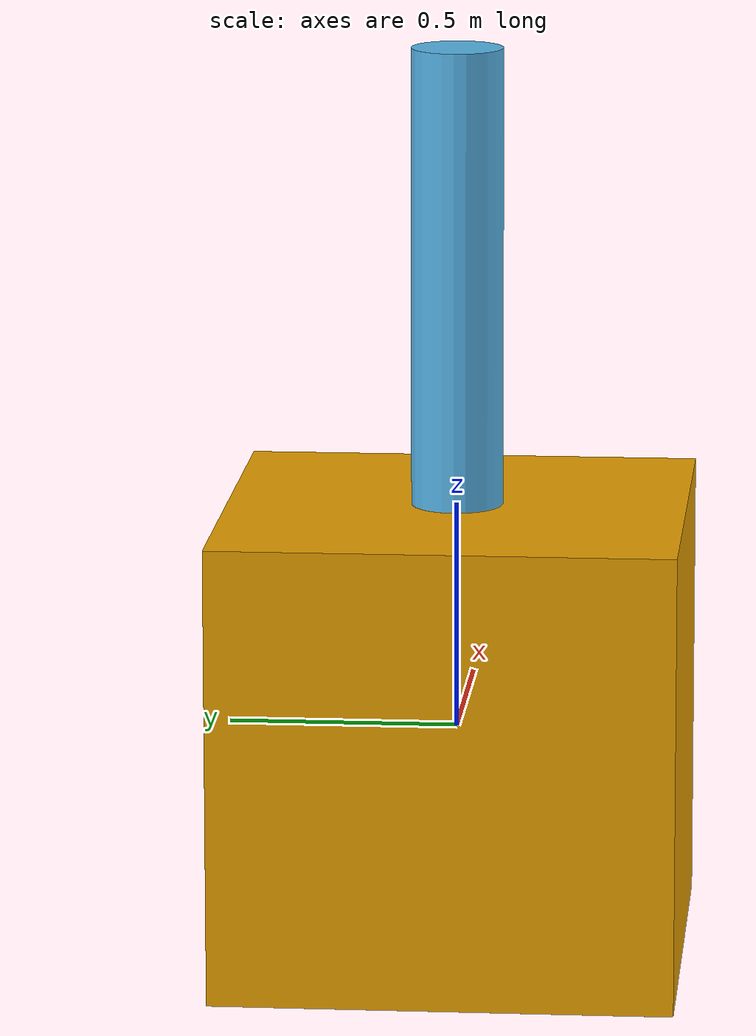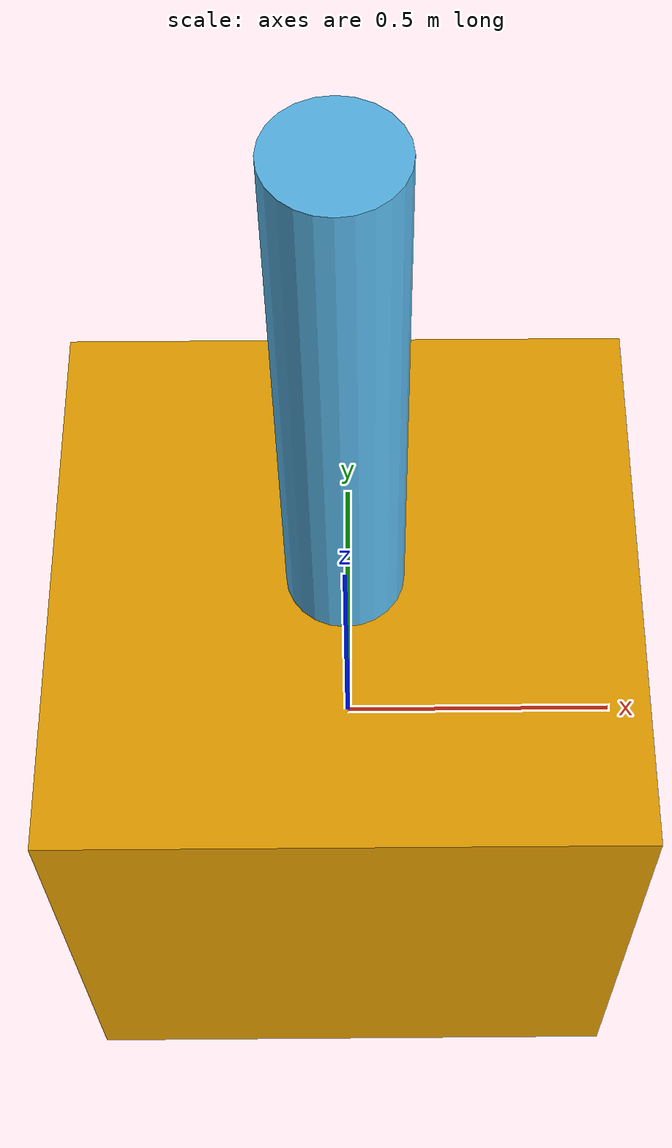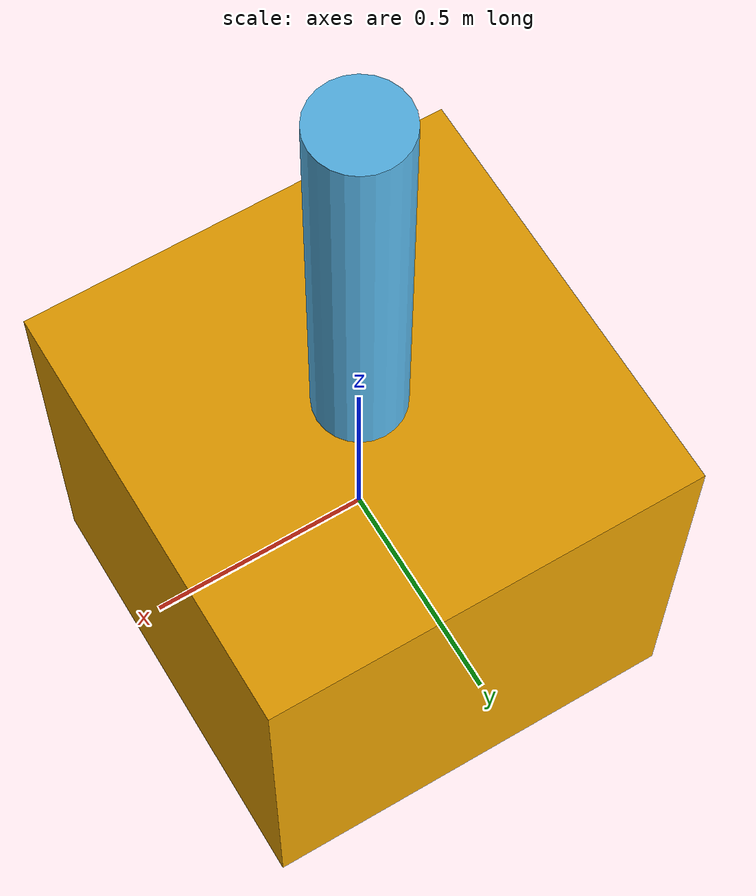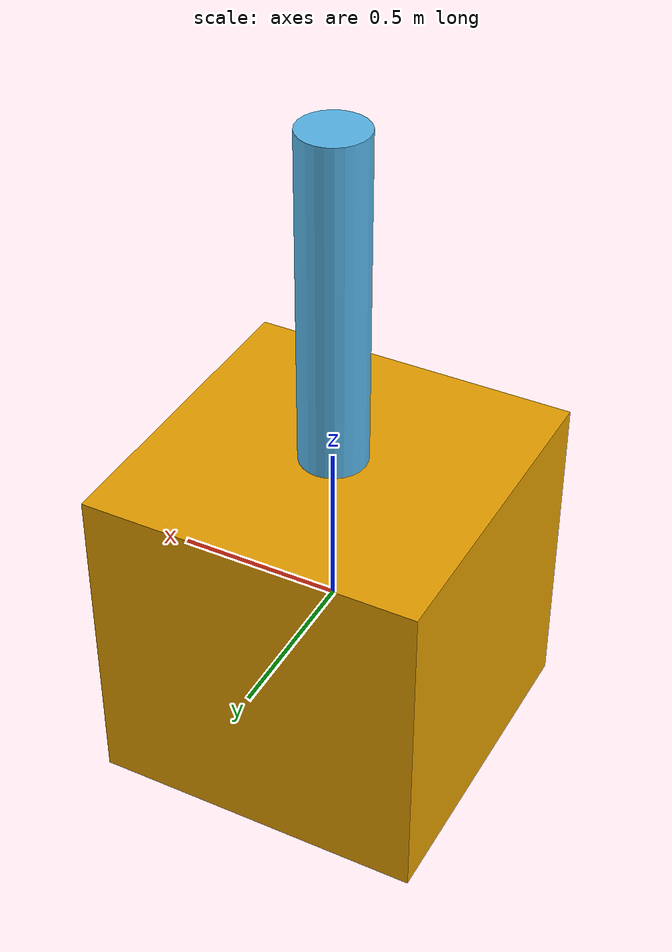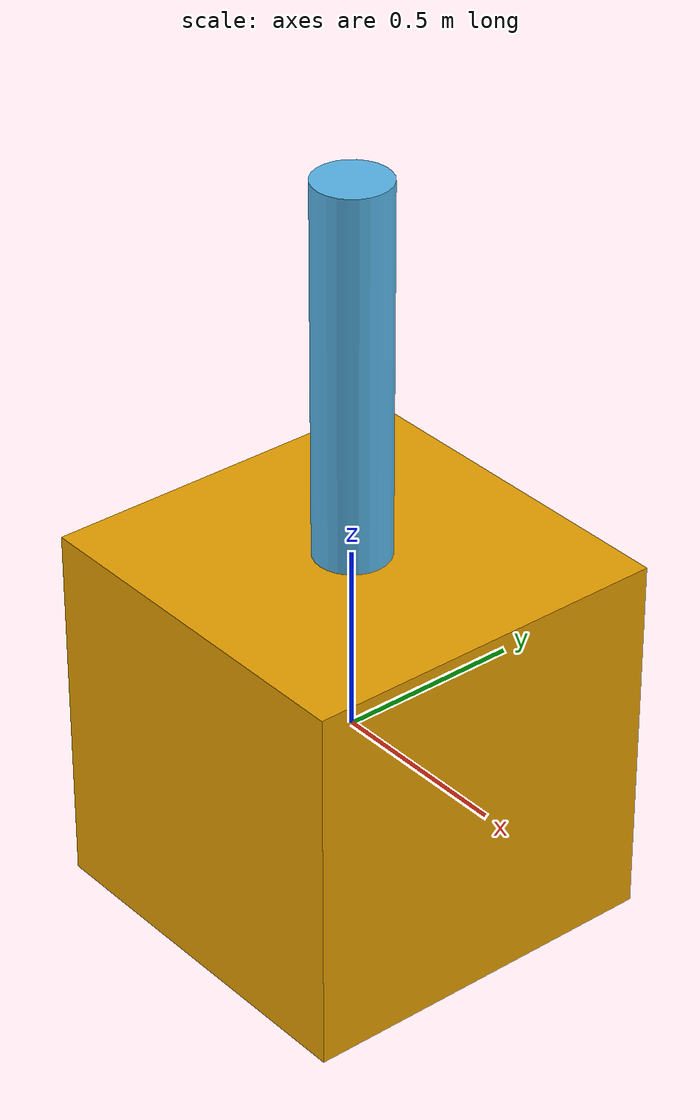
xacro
<robot name="two_link_robot" xmlns:xacro="http://www.ros.org/wiki/xacro">
    <xacro:property name="link_radius" value="0.1"/>
    <xacro:property name="link_length" value="1.0"/>

    <link name="base_link">
        <visual>
            <origin xyz="0 0 0"/>
            <geometry>
                <box size="1 1 1"/>
            </geometry>
        </visual>
    </link>

    <joint name="joint1" type="revolute">
        <parent link="base_link"/>
        <child link="second_link"/>
        <origin xyz="0 0 0.5" rpy="0 0 0"/>
        <axis xyz="1 0 0"/>
        <limit lower="-1.57" upper="1.57" effort="1000" velocity="1.0"/>
    </joint>

    <link name="second_link">
        <visual>
            <origin xyz="0 0 ${link_length/2}" rpy="0 0 0"/>
            <geometry>
                <cylinder radius="${link_radius}" length="${link_length}"/>
            </geometry>
        </visual>
    </link>
</robot>
